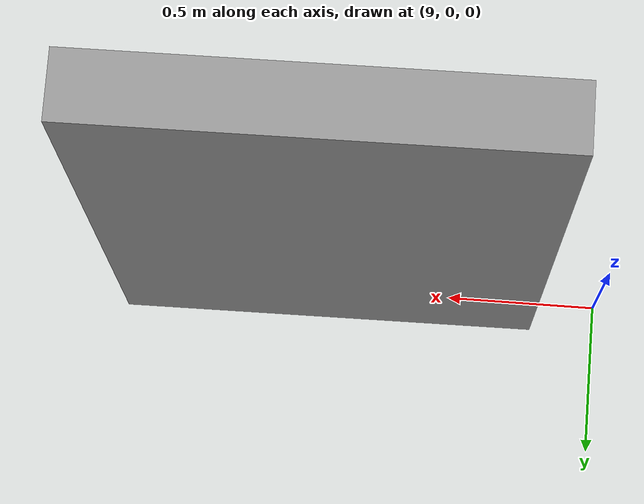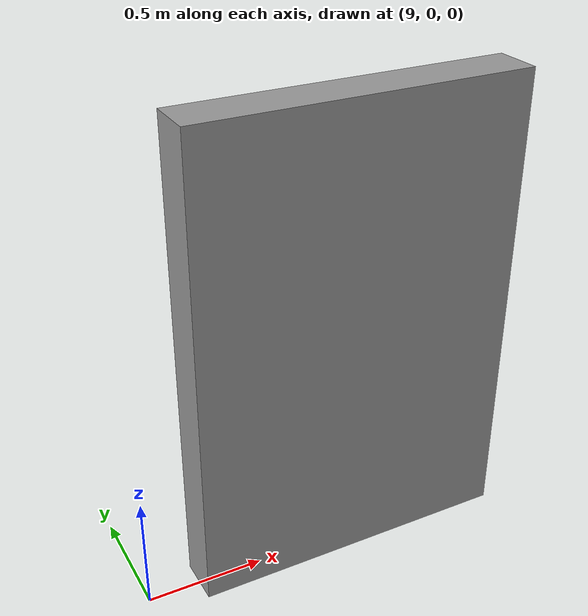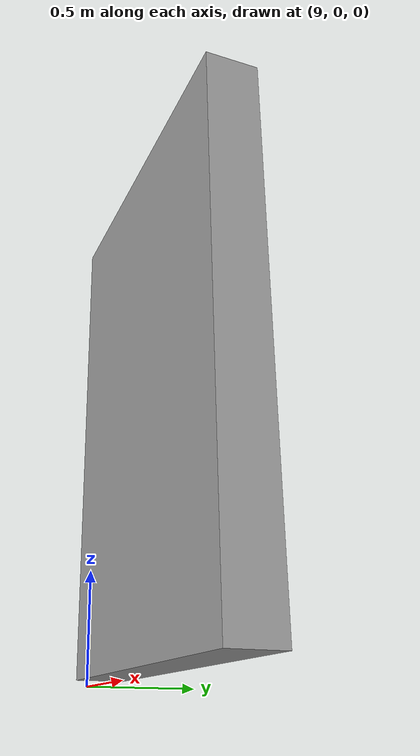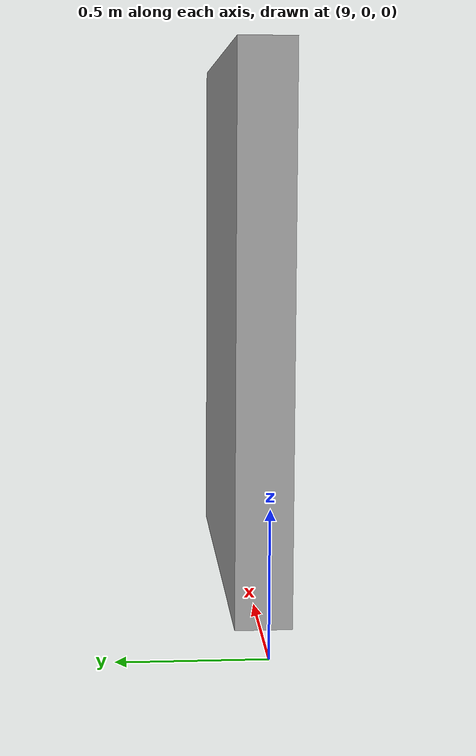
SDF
<?xml version='1.0'?>
<sdf version='1.6'>
  <model name='door'>
    <pose frame=''>0 0 0 0 -0 0</pose>
    <link name='Door_1'>
      <collision name='Door_1_Collision'>
        <geometry>
          <box>
            <size>1.384 0.2 2</size>
          </box>
        </geometry>
        <pose frame=''>0 0 1 0 -0 0</pose>
      </collision>
      <visual name='Door_1_Visual'>
        <pose frame=''>0 0 1 0 -0 0</pose>
        <geometry>
          <box>
            <size>1.384 0.2 2</size>
          </box>
        </geometry>
        <material>
          <script>
            <uri>file://media/materials/scripts/gazebo.material</uri>
            <name>Gazebo/Grey</name>
          </script>
        </material>
      </visual>
      <pose frame=''>9.909 0 0.013 0 0 -3.13264</pose>
    </link>
    <static>1</static>
  </model>
</sdf>
